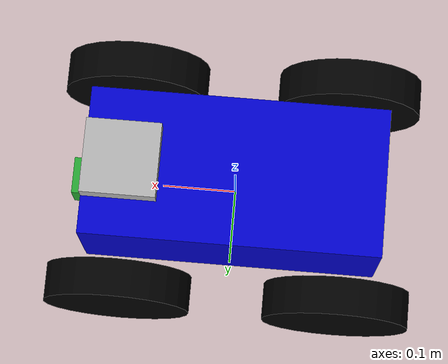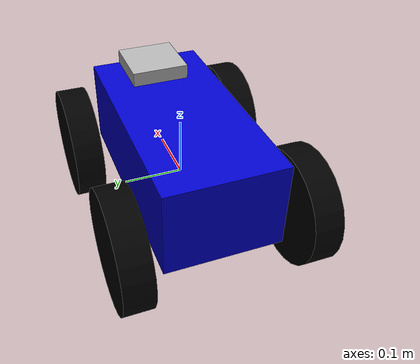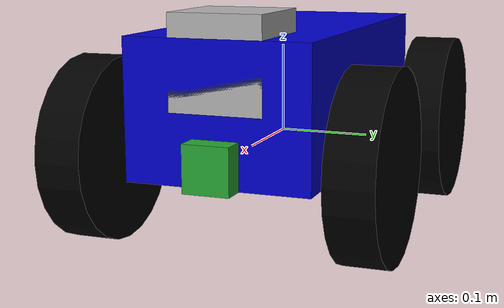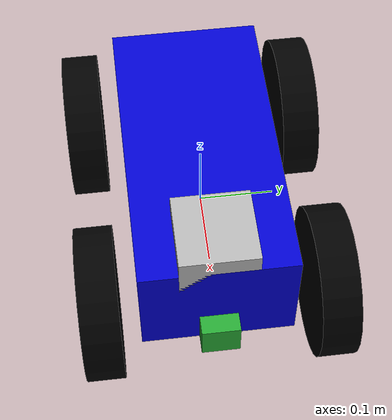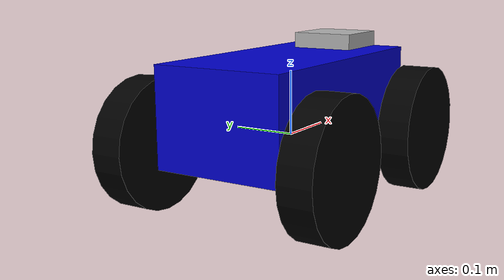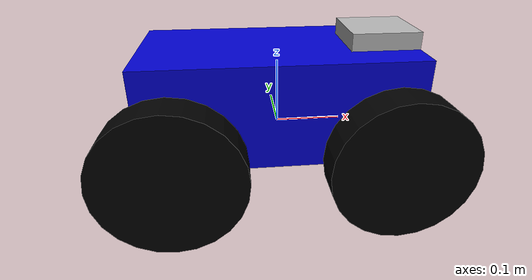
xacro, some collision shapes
<?xml version='1.0'?>

<robot name="my_bot" xmlns:xacro="http://www.ros.org/wiki/xacro">
<xacro:include filename="$(find my_bot)/urdf/my_bot.gazebo" />
<xacro:include filename="$(find my_bot)/urdf/material.xacro" />

  <link name="robot_footprint"></link>

  <joint name="robot_footprint_joint" type="fixed">
    <origin xyz="0 0 0" rpy="0 0 0" />
    <parent link="robot_footprint"/>
    <child link="chassis" />
  </joint>

  <link name='chassis'>
    <pose>0 0 0.1 0 0 0</pose>

    <inertial>
      <mass value="15.0"/>
      <origin xyz="0.0 0 0" rpy=" 0 0 0"/>
      <inertia
          ixx="0.1" ixy="0" ixz="0"
          iyy="0.1" iyz="0"
          izz="0.1"
      />
    </inertial>

    <collision name='collision'>
      <origin xyz="0 0 0.05" rpy=" 0 0 0"/>
      <geometry>
        <box size=".4 .2 .15"/>
      </geometry>
    </collision>

    <visual name='chassis_visual'>
      <origin xyz="0 0 0.05" rpy=" 0 0 0"/>
      <geometry>
        <box size=".4 .2 .15"/>
      </geometry>
      <material name="blue"/>
    </visual>
  </link>

  <!-- front  left wheel model -->
  <link name="front_left_wheel">
  	 <visual name='front_left_wheel_visual'>
      <origin xyz="0 0 0" rpy=" 0 1.5707 1.5707"/>
      <geometry>
        <cylinder radius="0.1" length="0.05"/>
      </geometry>
      <material name="black"/>
    </visual>

     <collision name='front_left_wheel_collision'>
      <origin xyz="0 0 0" rpy=" 0 1.5707 1.5707"/>
      <geometry>
        <cylinder radius="0.1" length="0.05"/>
      </geometry>
    </collision>

     <inertial>
      <mass value="5.0"/>
      <origin xyz="0 0 0" rpy=" 0 1.5707 1.5707"/>
      <inertia
          ixx="0.1" ixy="0" ixz="0"
          iyy="0.1" iyz="0"
          izz="0.1"
      />
    </inertial>
  </link>
  <joint type="continuous" name="front_left_wheel_hinge">
  	<origin xyz="0.15 0.15 0" rpy=" 0 0 0"/>
    <child link="front_left_wheel"/>
    <parent link="chassis"/>
    <axis xyz="0 1 0" rpy=" 0 0 0"/>
    <limint effort="1000" velocity="1000"/>
    <dynamics damping="1.0" friction="1.0"/>
  </joint>

 <!-- front rigth wheel model -->
  <link name="front_right_wheel">
  	 <visual name='front_right_wheel_visual'>
      <origin xyz="0 0 0" rpy=" 0 1.5707 1.5707"/>
      <geometry>
        <cylinder radius="0.1" length="0.05"/>
      </geometry>
      <material name="black"/>
    </visual>

     <collision name='front_right_wheel_collision'>
      <origin xyz="0 0 0" rpy=" 0 1.5707 1.5707"/>
      <geometry>
        <cylinder radius="0.1" length="0.05"/>
      </geometry>
    </collision>

     <inertial>
      <mass value="5.0"/>
      <origin xyz="0 0 0" rpy=" 0 1.5707 1.5707"/>
      <inertia
          ixx="0.1" ixy="0" ixz="0"
          iyy="0.1" iyz="0"
          izz="0.1"
      />
    </inertial>
  </link>
  <joint type="continuous" name="front_right_wheel_hinge">
  	<origin xyz="0.15 -0.15 0" rpy=" 0 0 0"/>
    <child link="front_right_wheel"/>
    <parent link="chassis"/>
    <axis xyz="0 1 0" rpy=" 0 0 0"/>
    <limint effort="1000" velocity="1000"/>
    <dynamics damping="1.0" friction="1.0"/>
  </joint>

   <!-- back  left wheel model -->
  <link name="back_left_wheel">
  	 <visual name='back_left_wheel_visual'>
      <origin xyz="0 0 0" rpy=" 0 1.5707 1.5707"/>
      <geometry>
        <cylinder radius="0.1" length="0.05"/>
      </geometry>
      <material name="black"/>
    </visual>

     <collision name='back_left_wheel_collision'>
      <origin xyz="0 0 0" rpy=" 0 1.5707 1.5707"/>
      <geometry>
        <cylinder radius="0.1" length="0.05"/>
      </geometry>
    </collision>

     <inertial>
      <mass value="5.0"/>
      <origin xyz="0 0 0" rpy=" 0 1.5707 1.5707"/>
      <inertia
          ixx="0.1" ixy="0" ixz="0"
          iyy="0.1" iyz="0"
          izz="0.1"
      />
    </inertial>
  </link>
  <joint type="continuous" name="back_left_wheel_hinge">
  	<origin xyz="-0.15 0.15 0" rpy=" 0 0 0"/>
    <child link="back_left_wheel"/>
    <parent link="chassis"/>
    <axis xyz="0 1 0" rpy=" 0 0 0"/>
    <limint effort="1000" velocity="1000"/>
    <dynamics damping="1.0" friction="1.0"/>
  </joint>

 <!-- back rigth wheel model -->
  <link name="back_right_wheel">
  	 <visual name='back_right_wheel_visual'>
      <origin xyz="0 0 0" rpy=" 0 1.5707 1.5707"/>
      <geometry>
        <cylinder radius="0.1" length="0.05"/>
      </geometry>
      <material name="black"/>
    </visual>

     <collision name='back_right_wheel_collision'>
      <origin xyz="0 0 0" rpy=" 0 1.5707 1.5707"/>
      <geometry>
        <cylinder radius="0.1" length="0.05"/>
      </geometry>
    </collision>

     <inertial>
      <mass value="5.0"/>
      <origin xyz="0 0 0" rpy=" 0 1.5707 1.5707"/>
      <inertia
          ixx="0.1" ixy="0" ixz="0"
          iyy="0.1" iyz="0"
          izz="0.1"
      />
    </inertial>
  </link>
  <joint type="continuous" name="back_right_wheel_hinge">
  	<origin xyz="-0.15 -0.15 0" rpy=" 0 0 0"/>
    <child link="back_right_wheel"/>
    <parent link="chassis"/>
    <axis xyz="0 1 0" rpy=" 0 0 0"/>
    <limint effort="1000" velocity="1000"/>
    <dynamics damping="1.0" friction="1.0"/>
  </joint>

   <!-- camera link -->
  <link name="camera">
  	 <visual name='camera_visual'>
      <origin xyz="0 0 0" rpy=" 0 0 0"/>
      <geometry>
        <box size="0.05 0.05 0.05"/>
      </geometry>
    </visual>

     <collision name='camera_collision'>
      <origin xyz="0 0 0" rpy=" 0 0 0"/>
      <geometry>
        <box size="0.05 0.05 0.05"/>
      </geometry>
    </collision>

     <inertial>
      <mass value="1.0"/>
      <origin xyz="0 0 0" rpy=" 0 0 0"/>
      <inertia
          ixx="1e-6" ixy="0" ixz="0"
          iyy="1e-6" iyz="0"
          izz="1e-6"
      />
    </inertial>
  </link>
  <joint type="fixed" name="camera_joint">
  	<origin xyz="0.2 0 0" rpy="0 0 0" />
    <parent link="chassis" />
    <child link="camera" />
  </joint>

   <!-- hokuyo link -->
  <link name="hokuyo">
  	 <visual name='hokuyo_visual'>
      <origin xyz="0 0 0" rpy=" 0 0 0"/>
      <geometry>
        <mesh filename="package://my_bot/meshes/hokuyo.dae"/>
      </geometry>

    </visual>

     <collision name='hokuyo_collision'>
      <origin xyz="0 0 0" rpy=" 0 0 0"/>
      <geometry>
        <box size="0.1 0.1 0.1"/>
      </geometry>
    </collision>

     <inertial>
      <mass value="1.0"/>
      <origin xyz="0 0 0" rpy=" 0 0 0"/>
      <inertia
          ixx="1e-6" ixy="0" ixz="0"
          iyy="1e-6" iyz="0"
          izz="1e-6"
      />
    </inertial>
  </link>

  <joint type="fixed" name="hokuyo_joint">
  	<origin xyz=".15 0 0.1" rpy="0 0 0" />
    <parent link="chassis" />
    <child link="hokuyo" />
    <axis xyz="1 0 0" rpy="0 0 0"/>
  </joint>
</robot>

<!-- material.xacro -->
<robot name="my_bot" xmlns:xacro="http://www.ros.org/wiki/xacro">
<material name="black">
<color rgba="0.0 0.0 0.0 1.0" />
</material>

<material name="blue">
<color rgba="0.0 0.0 0.8 1.0" />
</material>

<material name="green">
<color rgba="0.0 0.8 0.0 1.0" />
</material>

<material name="red">
<color rgba="0.8 0.0 0.0 1.0" />
</material>

<material name="white">
<color rgba="1.0 1.0 1.0 1.0" />
</material>

</robot>
